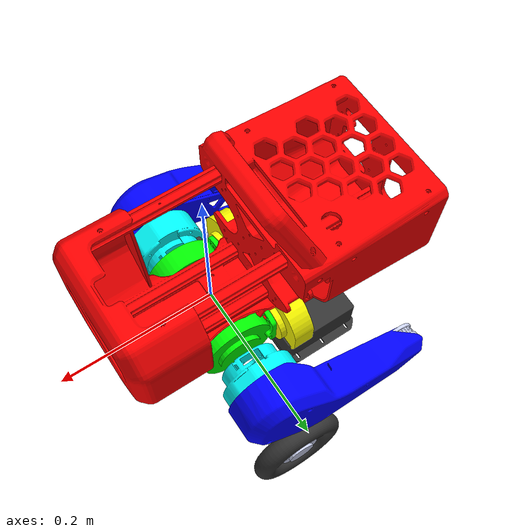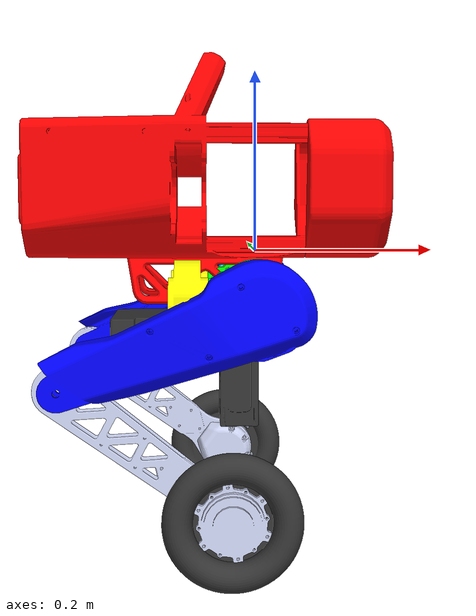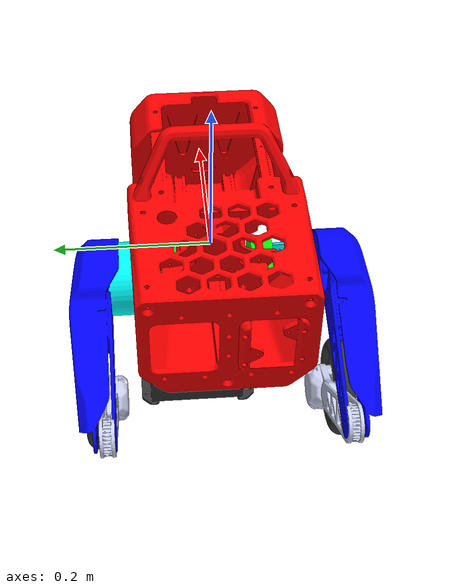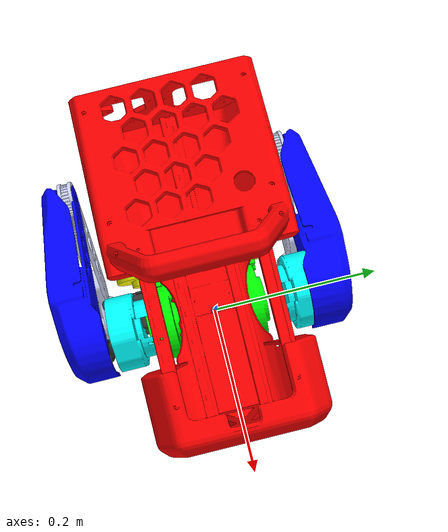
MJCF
<mujoco model="bi_urdf">
  <compiler angle="radian" meshdir="/home/csl/robot_model/bi_urdf/meshes/"/>
  <size njmax="500" nconmax="100" />

  <option cone="elliptic" impratio="100" />

  <default>
      <default class="crazydog">
          <geom friction="0.4" margin="0.001" condim="1"/>
          <joint axis="0 1 0" damping="0.1" armature="0.01" frictionloss="0.2"/>
          <motor ctrlrange="-23.7 23.7"/>
          <default class="visual">
              <geom type="mesh" contype="0" conaffinity="0" group="2"/>
          </default>
          <default class="collision">
              <geom group="3"/>
              <default class="foot">
              <geom size="0.022"  priority="1" condim="6"
                  friction="0.8 0.02 0.01"/>
              </default>
          </default>
      </default>
  </default>
  <asset>
    <mesh name="base_link" file="base_link.STL"/>
    <mesh name="orin_Link" file="orin_Link.STL"/>
    <mesh name="bat_Link" file="bat_Link.STL"/>
    <mesh name="r_Link" file="r_Link.STL"/>
    <mesh name="rr_Link" file="rr_Link.STL"/>
    <mesh name="rrr_Link" file="rrr_Link.STL"/>
    <mesh name="ru_Link" file="ru_Link.STL"/>
    <mesh name="rd_Link" file="rd_Link.STL"/>
    <mesh name="rw_Link" file="rw_Link.STL"/>
    <mesh name="l_Link" file="l_Link.STL"/>
    <mesh name="ll_Link" file="ll_Link.STL"/>
    <mesh name="lll_Link" file="lll_Link.STL"/>
    <mesh name="lu_Link" file="lu_Link.STL"/>
    <mesh name="ld_Link" file="ld_Link.STL"/>
    <mesh name="lw_Link" file="lw_Link.STL"/>
  </asset>

  <worldbody>
    <body name="base_link" pos="0 0 0" childclass="crazydog">
      <inertial pos="0.01096 0.00049 -0.08447" quat="1 0 0 0" mass="1.7" diaginertia="0.01982751490 0.02421281189 0.0108854248"/>
      <freejoint />
      <site name="imu" pos="0 0 0" />
      <geom type="mesh" contype="0" conaffinity="0" group="1" density="0" rgba="1 0 0 1" mesh="base_link"/>
      <geom type="mesh" rgba="1 0 0 1" mesh="base_link"/>
      <body name="orin_Link">
        <inertial pos="-0.02408 0.02189 0.05730" quat="1 0 0 0" mass="0.3" diaginertia="0.00166804201 0.00147844807 0.00065122384"/>
        <geom pos="-0.0918148 -0.0249 -0.117725" quat="1 0 0 0" type="mesh" contype="0" conaffinity="0" group="1" density="0" rgba="0.2 0.2 0.2 1" mesh="orin_Link"/>
        <geom pos="-0.0918148 -0.0249 -0.117725" quat="1 0 0 0" type="mesh" rgba="0.2 0.2 0.2 1" mesh="orin_Link"/>
      </body>
      <body name="bat_Link">
        <inertial pos="0.02860 0.00224 0.02251" quat="1 0 0 0" mass="0.672" diaginertia="0.00085048156 0.00203345215 0.00199728964"/>
        <geom pos="-0.0416148 0 -0.179925" quat="1 0 0 0" type="mesh" contype="0" conaffinity="0" group="1" density="0" rgba="0.2 0.2 0.2 1" mesh="bat_Link"/>
        <geom pos="-0.0416148 0 -0.179925" quat="1 0 0 0" type="mesh" rgba="0.2 0.2 0.2 1" mesh="bat_Link"/>
      </body>
      <body name="r_Link">
        <inertial pos="-0.02073 0.00000 0.00000" quat="1 0 0 0" mass="0.536" diaginertia="0.00055434936 0.00056855215 0.00055851307"/>
        <geom pos="-0.0535148 -0.05625 -0.0547753" type="mesh" contype="0" conaffinity="0" group="1" density="0" rgba="1 1 0 1" mesh="r_Link"/>
        <geom pos="-0.0535148 -0.05625 -0.0547753" type="mesh" rgba="1 1 0 1" mesh="r_Link"/>
        <body name="rr_Link">
          <inertial pos="0.04914 0.00083 0.00000" quat="1 0 0 0" mass="0.573" diaginertia="0.00035721873 0.00204430103 0.00181053200"/>
          <geom pos="-0.0535148 -0.05625 -0.0547753" quat="1 0 0 0" type="mesh" contype="0" conaffinity="0" group="1" density="0" rgba="0 1 0 1" mesh="rr_Link"/>
          <geom pos="-0.0535148 -0.05625 -0.0547753" quat="1 0 0 0" type="mesh" rgba="0 1 0 1" mesh="rr_Link"/>
          <body name="rrr_Link">
            <inertial pos="0.00003 -0.03730 0.00006" quat="1 0 0 0" mass="0.614" diaginertia="0.00131289621 0.00065691561 0.00133828329"/>
            <geom pos="-0.000265036 -0.0706925 -0.0547753" quat="1 0 0 0" type="mesh" contype="0" conaffinity="0" group="1" density="0" rgba="0 1 1 1" mesh="rrr_Link"/>
            <geom pos="-0.000265036 -0.0706925 -0.0547753" quat="1 0 0 0" type="mesh" rgba="0 1 1 1" mesh="rrr_Link"/>
            <body name="ru_Link">
              <inertial pos="-0.00005 -0.01317 -0.06660" quat="1 0 0 0" mass="0.509" diaginertia="0.00525901222 0.00534816854 0.00037880824"/>
              <geom pos="-0.000265036 -0.1284 -0.0547753" quat="0.820664 0 0.571411 0" type="mesh" contype="0" conaffinity="0" group="1" density="0" rgba="0 0 1 1" mesh="ru_Link"/>
              <geom pos="-0.000265036 -0.1284 -0.0547753" quat="0.820664 0 0.571411 0" type="mesh" rgba="0 0 1 1" mesh="ru_Link"/>
              <body name="rd_Link">
                <inertial pos="0.00002 -0.02119 -0.15275" quat="1 0 0 0" mass="0.555" diaginertia="0.07912920088 0.07892173375 0.00047477095"/>
                <geom pos="-0.201908 -0.1284 -0.129376" quat="0.895306 0 -0.445451 0" type="mesh" contype="0" conaffinity="0" group="1" density="0" rgba="0.792157 0.819608 0.933333 1" mesh="rd_Link"/>
                <geom pos="-0.201908 -0.1284 -0.129376" quat="0.895306 0 -0.445451 0" type="mesh" rgba="0.792157 0.819608 0.933333 1" mesh="rd_Link"/>
                <body name="rw_Link" pos="-0.0304171 -0.157081 -0.259052" quat="0.895306 0 -0.445451 0">
                  <inertial pos="0.00000 -0.01520 0.00000" quat="0.718647 0.123094 -0.115814 0.674523" mass="0.28" diaginertia="0.00052305084 0.00088385874 0.00052304732"/>
                  <joint name="R_calf2wheel" pos="0 0 0" axis="0 1 0"/>
                  <geom type="mesh" contype="0" conaffinity="0" group="1" density="0" rgba="0.2 0.2 0.2 1" mesh="rw_Link"/>
                  <geom type="mesh" rgba="0.2 0.2 0.2 1" mesh="rw_Link" class="foot"/>
                </body>
              </body>
            </body>
          </body>
        </body>
      </body>
      <body name="l_Link">
        <inertial pos="-0.02073 0.00000 0.00000" quat="1 0 0 0" mass="0.536" diaginertia="0.00055434856 0.0005685498 0.00055851452"/>
        <geom pos="-0.0535148 0.05625 -0.0547753" type="mesh" contype="0" conaffinity="0" group="1" density="0" rgba="1 1 0 1" mesh="l_Link"/>
        <geom pos="-0.0535148 0.05625 -0.0547753" type="mesh" rgba="1 1 0 1" mesh="l_Link"/>
        <body name="ll_Link">
          <inertial pos="0.04914 -0.00083 0.00000" quat="1 0 0 0" mass="0.573" diaginertia="0.00035724030 0.00204413821 0.00181035052"/>
          <geom pos="-0.0535148 0.05625 -0.0547753" quat="1 0 0 0" type="mesh" contype="0" conaffinity="0" group="1" density="0" rgba="0 1 0 1" mesh="ll_Link"/>
          <geom pos="-0.0535148 0.05625 -0.0547753" quat="1 0 0 0" type="mesh" rgba="0 1 0 1" mesh="ll_Link"/>
          <body name="lll_Link">
            <inertial pos="0.00003 0.03730 0.00006" quat="1 0 0 0" mass="0.614" diaginertia="0.00131284561 0.00065685338 0.00133818598"/>
            <geom pos="-0.000265036 0.0706925 -0.0547753" quat="1 0 0 0" type="mesh" contype="0" conaffinity="0" group="1" density="0" rgba="0 1 1 1" mesh="lll_Link"/>
            <geom pos="-0.000265036 0.0706925 -0.0547753" quat="1 0 0 0" type="mesh" rgba="0 1 1 1" mesh="lll_Link"/>
            <body name="lu_Link">
              <inertial pos="-0.00005 0.01317 -0.06659" quat="1 0 0 0" mass="0.509" diaginertia="0.00525893053 0.00534809715 0.00037881411"/>
              <geom pos="-0.000265036 0.1284 -0.0547753" quat="0.820664 0 0.571411 0" type="mesh" contype="0" conaffinity="0" group="1" density="0" rgba="0 0 1 1" mesh="lu_Link"/>
              <geom pos="-0.000265036 0.1284 -0.0547753" quat="0.820664 0 0.571411 0" type="mesh" rgba="0 0 1 1" mesh="lu_Link"/>
              <body name="ld_Link">
                <inertial pos="0.00002 0.02119 -0.15276" quat="1 0 0 0" mass="0.555" diaginertia="0.01701980935 0.01681236184 0.00047476800"/>
                <geom pos="-0.201908 0.1284 -0.129376" quat="0.895306 0 -0.445451 0" type="mesh" contype="0" conaffinity="0" group="1" density="0" rgba="0.792157 0.819608 0.933333 1" mesh="ld_Link"/>
                <geom pos="-0.201908 0.1284 -0.129376" quat="0.895306 0 -0.445451 0" type="mesh" rgba="0.792157 0.819608 0.933333 1" mesh="ld_Link"/>
                <body name="lw_Link" pos="-0.0304171 0.157081 -0.259052" quat="0.895306 0 -0.445451 0">
                  <inertial pos="0.00000 0.01520 0.00000" quat="0.674522 -0.115814 0.123094 0.718648" mass="0.28" diaginertia="0.00052305061 0.00088385420 0.00052304301"/>
                  <joint name="L_calf2wheel" pos="0 0 0" axis="0 1 0"/>
                  <geom type="mesh" contype="0" conaffinity="0" group="1" density="0" rgba="0.2 0.2 0.2 1" mesh="lw_Link"/>
                  <geom type="mesh" rgba="0.2 0.2 0.2 1" mesh="lw_Link" class="foot"/>
                </body>
              </body>
            </body>
          </body>
        </body>
      </body>
    </body>
  </worldbody>

  <actuator>
        <motor ctrlrange="-15 15" name="R_wheel" joint="R_calf2wheel" />
        <motor ctrlrange="-15 15" name="L_wheel" joint="L_calf2wheel" />
  </actuator>

  <sensor>
      <jointpos name="R_wheel_pos" joint="R_calf2wheel" />
      <jointpos name="L_wheel_pos" joint="L_calf2wheel" />

      <jointvel name="R_wheel_vel" joint="R_calf2wheel" noise="0.0"/>
      <jointvel name="L_wheel_vel" joint="L_calf2wheel" noise="0.0"/>

      <jointactuatorfrc name="R_wheel_torque" joint="R_calf2wheel" />
      <jointactuatorfrc name="F_wheel_torque" joint="L_calf2wheel" />

      <framequat name="imu_quat" objtype="site" objname="imu" noise="0.0"/>
      <gyro name="imu_gyro" site="imu" noise="0.0"/>
      <accelerometer name="imu_acc" site="imu" />

      <framepos name="frame_pos" objtype="site" objname="imu" />
      <framelinvel name="frame_lin_vel" objtype="site" objname="imu" />
      <frameangvel name="frame_ang_vel" objtype="site" objname="imu" />
  </sensor>
</mujoco>
